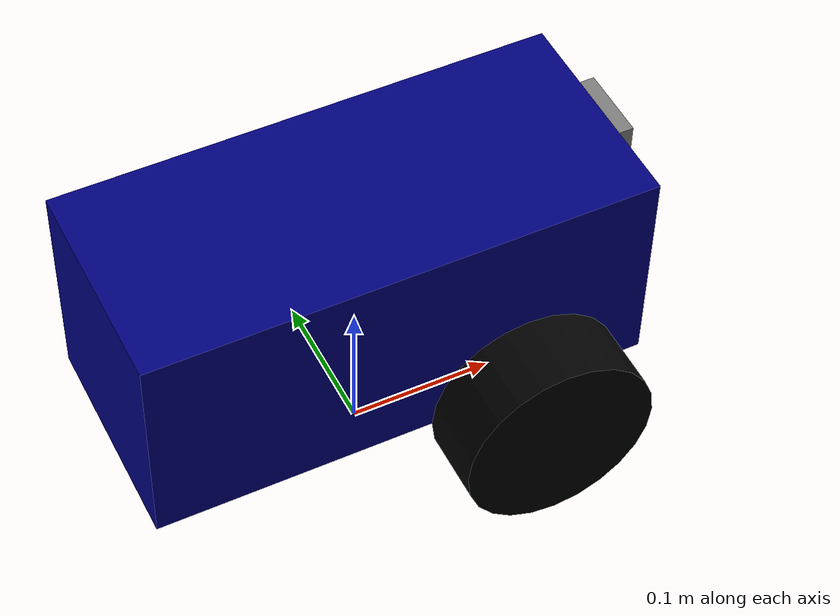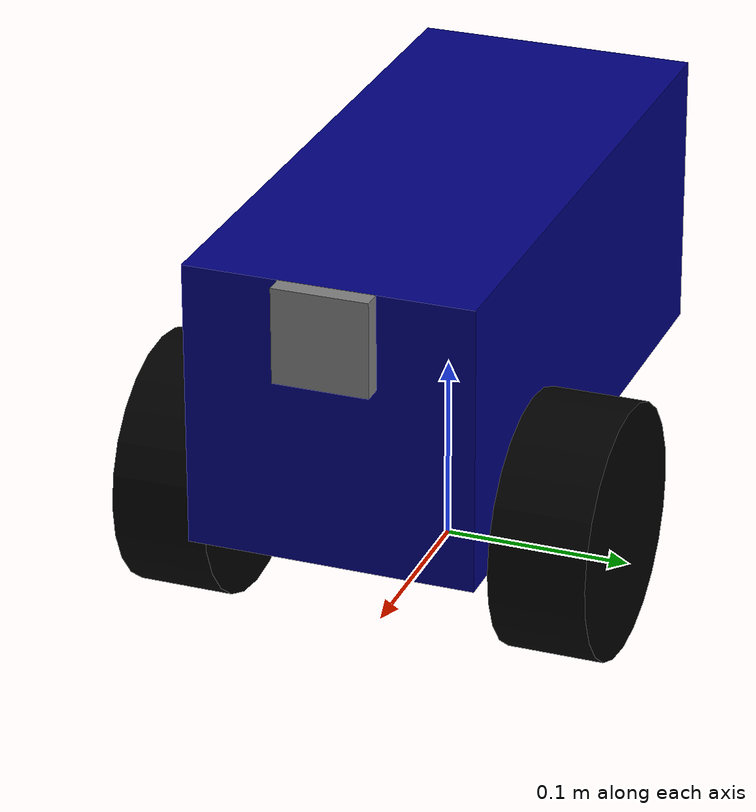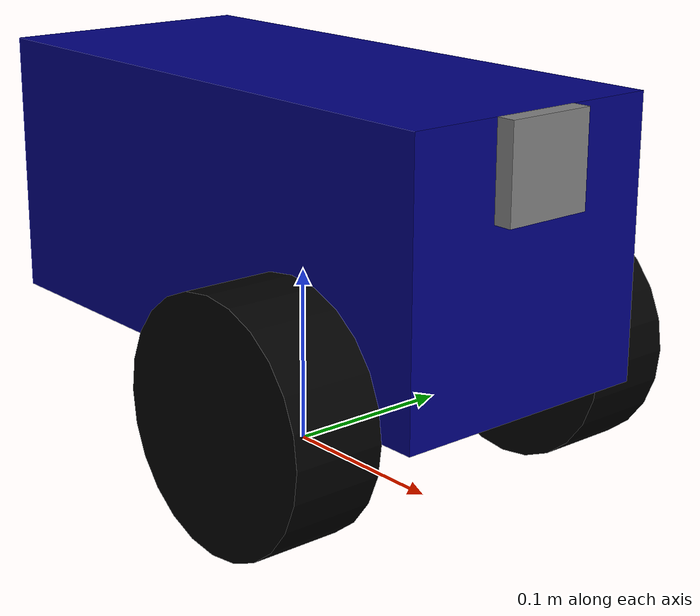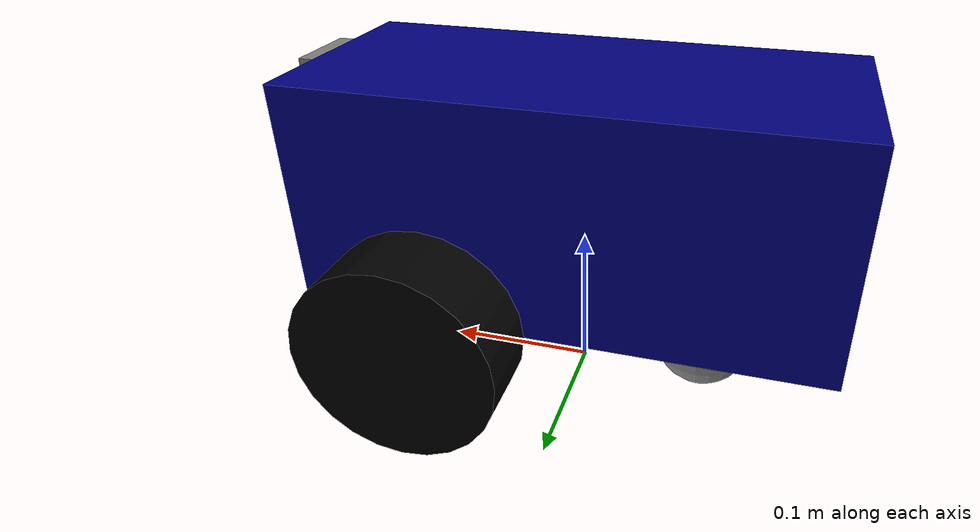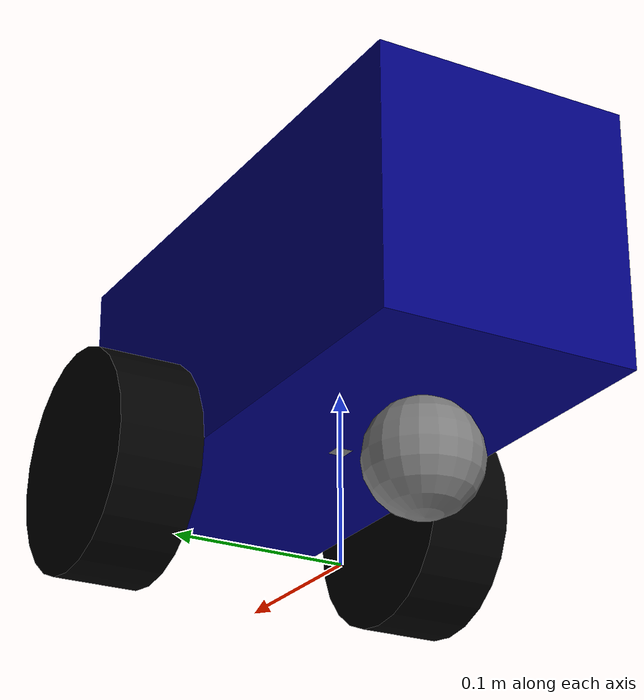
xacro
<?xml version="1.0"?>
<robot name="duckiebot" xmlns:xacro="http://www.ros.org/wiki/xacro">   <!-- xacro'da bu önemli -->
    <!-- xacro'da başka bir xacro dosyasını include edebiliriz -->
    <!-- common properties'i mobile_base'de include edebilir miydik? evet ama başka xacro dosyalarında da kullanılabilirdi bu common properties. o zaman onu burda include etmek daha mantıklı-->
    <xacro:include filename="common_properties.xacro" /> <!-- bunu yapınca o dosyalar otomatik çalışacaklar, ama launch dosyasına sadece bu main dosya çalıştırılıyor. magic-->
    <xacro:include filename="mobile_base.xacro" />
    <xacro:include  filename="mobile_base_gazebo.xacro" />
    <xacro:include  filename="camera.xacro" />
    <xacro:include  filename="imu.xacro" />
</robot>

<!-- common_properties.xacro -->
<!-- bu dosyayı direkt launch etmicez, main dosyaya include edip öyle kullanıcaz, o yüzden isim yazmıyorum name ="bla bla" diye, sadece xacro linkini veriyorum -->
<robot xmlns:xacro="http://www.ros.org/wiki/xacro">
    <material name="blue">
        <color rgba="0 0 0.5 1"/>
    </material>

    <material name="black">
        <color rgba="0 0 0 1"/>
    </material>

    <material name="grey">
        <color rgba="0.5 0.5 0.5 1"/>
    </material>

    <!-- sadece değişken değil fonksiyon da tanımlayabilirsin -->
    <!-- box inertia'yı fonksiyon olarak yazıp her türlü box'a uyarlayabilir olucaz. -->
    <xacro:macro name="box_inertia" params="m x y z o_xyz o_rpy">
        <inertial>
            <mass value="${m}" />
            <origin xyz="${o_xyz}" rpy ="${o_rpy}" />
            <inertia ixx="${(m/12) * (y*y + z*z)}" ixy="0" ixz="0"
                     iyy="${(m/12) * (x*x + z*z)}" iyz="0"
                     izz="${(m/12) * (x*x + y*y)}" />
        </inertial>
    </xacro:macro>

    <!-- cylinder inertia'yı fonksiyon olarak yazıp her türlü cylinder linke (rigid part) uyarlayabilir olucaz. -->
    <xacro:macro name="cylinder_inertia" params="m r h o_xyz o_rpy">
        <inertial>
            <mass value="${m}" />
            <origin xyz="${o_xyz}" rpy ="${o_rpy}" />
            <inertia ixx="${(m/12) * (3*r*r + h*h)}" ixy="0" ixz="0"
                     iyy="${(m/12) * (3*r*r + h*h)}" iyz="0"
                     izz="${(m*r*r)/2.0}" />
        </inertial>
    </xacro:macro>

        <!-- cylinder inertia'yı fonksiyon olarak yazıp her türlü cylinder linke (rigid part) uyarlayabilir olucaz. -->
    <xacro:macro name="sphere_inertia" params="m r o_xyz o_rpy">
        <inertial>
            <mass value="${m}" />
            <origin xyz="${o_xyz}" rpy ="${o_rpy}" />
            <inertia ixx="${(m*r*r)*2/5}" ixy="0" ixz="0"
                     iyy="${(m*r*r)*2/5}" iyz="0"
                     izz="${(m*r*r)*2/5}" />
        </inertial>
    </xacro:macro>
</robot>

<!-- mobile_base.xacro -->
<robot xmlns:xacro="http://www.ros.org/wiki/xacro">

    <xacro:property name="base_length" value="0.34" />
    <xacro:property name="base_width" value="0.15" />
    <xacro:property name="base_height" value="0.15" />
    <xacro:property name="wheel_radius" value="0.066" />
    <xacro:property name="wheel_length" value="0.05" />

    <link name="base_footprint" >
        <origin xyz= "0 0 0" rpy="0 0 0" />
    </link>

    <xacro:macro name="wheel_link" params="prefix">
        <link name="${prefix}_wheel_link">
            <visual>
                <geometry>
                    <cylinder radius="${wheel_radius}" length="${wheel_length}"/>
                </geometry>
                <origin xyz="0 0 0" rpy ="${pi / 2.0} 0 0" />
                <material name="black" />
            </visual>
            <collision>
                <geometry>
                    <sphere radius="${wheel_radius}" />
                </geometry>
                <origin xyz="0 0 0" rpy ="0 0 0" /> <!-- silindir gibi rotate etmedik çünkü sphere olduğu için bişi değiştirmicek-->
            </collision>
            <!-- inertia eklicez common properties'te tanıttığımız fonksiyonu kullanarak, m kilogram cinsinden-->
            <xacro:cylinder_inertia m="1.0" r="${wheel_radius}" h="${wheel_length}" o_xyz="0 0 0" o_rpy="${pi / 2.0} 0 0" />
        </link>
    </xacro:macro>

    <xacro:wheel_link prefix="right" />
    <xacro:wheel_link prefix="left" />

    <link name="base_link">
        <visual>
            <geometry>
                 <box size="${base_length} ${base_width} ${base_height}" /> <!-- length width height in meters -->
            </geometry>
            <origin xyz= "0 0 ${base_height / 2.0}" rpy="0 0 0" />
            <material name="blue" />
        </visual>
        <!-- collision ekliyoruz-->
        <collision>
            <!-- direkt visual'daki geometriyi ve origini koyduk, basit olması için -->
            <geometry>
                 <box size="${base_length} ${base_width} ${base_height}" />
            </geometry>
            <origin xyz= "0 0 ${base_height / 2.0}" rpy="0 0 0" />
        </collision>
        <!-- inertia eklicez common properties'te tanıttığımız fonksiyonu kullanarak-->
        <xacro:box_inertia m="1.8" x="${base_length}" y="${base_width}" z="${base_height}" o_xyz="0 0 ${base_height / 2.0}" o_rpy="0 0 0" />
    </link>

    <link name="caster_wheel_link">
        <visual>
            <geometry>
                <sphere radius="${wheel_radius / 2.0}"/>
            </geometry>
            <origin xyz="0 0 0" rpy ="0 0 0" />
            <material name="grey" />
        </visual>
        <!-- collisionu direkt yukardan kopyaladık-->
        <collision>
            <geometry>
                <sphere radius="${wheel_radius / 2.0}"/>
            </geometry>
            <origin xyz="0 0 0" rpy ="0 0 0" />
        </collision>
        <!-- inertia eklicez common properties'te tanıttığımız fonksiyonu kullanarak-->
        <xacro:sphere_inertia m="0.5" r="${wheel_radius / 2.0}" o_xyz="0 0 0" o_rpy="0 0 0" />
    </link>

    <joint name="base_caster_wheel_joint" type="fixed">
        <parent link="base_link" />
        <child link ="caster_wheel_link" />
        <origin xyz="${-base_length / 4.0} 0 ${-wheel_radius / 2.0}" rpy="0 0 0" />
    </joint>

    <joint name="base_right_wheel_joint" type="continuous">
        <parent link="base_link" />
        <child link="right_wheel_link" />
        <origin xyz="${base_length / 4.0} ${-(base_width + wheel_length) / 2.0} 0" rpy="0 0 0" />
        <axis xyz="0 1 0" />
    </joint>

    <joint name="base_left_wheel_joint" type="continuous">
        <parent link="base_link" />
        <child link="left_wheel_link" />
        <origin xyz="${base_length / 4.0} ${(base_width + wheel_length) / 2.0} 0" rpy="0 0 0" />
        <axis xyz="0 1 0" />
    </joint>

    <joint name="base_joint" type="fixed">
        <parent link="base_footprint" />
        <child link ="base_link" />
        <origin xyz="0 0 ${wheel_radius}" rpy="0 0 0" />
    </joint>
</robot>

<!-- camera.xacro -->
<robot xmlns:xacro="http://www.ros.org/wiki/xacro">

    <xacro:property name="camera_length" value="0.01" />
    <xacro:property name="camera_width" value="0.05" />
    <xacro:property name="camera_height" value="0.05" />

    <link name="camera_link">
        <visual>
            <geometry>
                <box size="${camera_length} ${camera_width} ${camera_height}" />
            </geometry>
            <material name="grey" />
        </visual>
        <collision>
            <geometry>
                <box size="${camera_length} ${camera_width} ${camera_height}" />
            </geometry>
        </collision>
        <xacro:box_inertia m="0.1" x="${camera_length}" y="${camera_width}" z="${camera_height}"
                           o_xyz="0 0 0" o_rpy="0 0 0" />
    </link>

    <joint name="base_camera_joint" type="fixed">
        <parent link="base_link" />
        <child link="camera_link" />
        <origin xyz="${(base_length + camera_length) / 2.0} 0 ${base_height-(camera_height/2.0)}" rpy="0 0 0" />
    </joint>

    <link name="camera_link_optical" />

    <joint name="camera_optical_joint" type="fixed">
        <origin xyz="0 0 0" rpy="${-pi/2} 0 ${-pi/2}"/>
        <parent link="camera_link"/>
        <child link="camera_link_optical"/>
    </joint>

    <gazebo reference="camera_link">
        <sensor name="camera" type="camera">
            <camera>
                <horizontal_fov>1.3962634</horizontal_fov>
                <image>
                    <width>640</width>
                    <height>480</height>
                    <format>R8G8B8</format>
                </image>
                <clip>
                    <near>0.1</near>
                    <far>15</far>
                </clip>
                <noise>
                    <type>gaussian</type>
                    <mean>0.0</mean>
                    <stddev>0.007</stddev>
                </noise>
                <optical_frame_id>camera_link_optical</optical_frame_id>
                <camera_info_topic>camera/camera_info</camera_info_topic>
            </camera>
            <always_on>1</always_on>
            <update_rate>20</update_rate>
            <visualize>true</visualize>
            <topic>camera/image_raw</topic>
        </sensor>
    </gazebo>

</robot>

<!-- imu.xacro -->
<robot xmlns:xacro="http://www.ros.org/wiki/xacro">

    <xacro:property name="imu_length" value="0.01" />
    <xacro:property name="imu_width" value="0.01" />
    <xacro:property name="imu_height" value="0.01" />

    <link name="imu_link">
        <visual>
            <geometry>
                <box size="${imu_length} ${imu_width} ${imu_height}" />
            </geometry>
            <material name="grey" />
        </visual>
        <collision>
            <geometry>
                <box size="${imu_length} ${imu_width} ${imu_height}" />
            </geometry>
        </collision>
        <xacro:box_inertia m="0.1" x="${imu_length}" y="${imu_width}" z="${imu_height}"
                           o_xyz="0 0 0" o_rpy="0 0 0" />
    </link>

    <joint name="base_imu_joint" type="fixed">
        <parent link="base_link" />
        <child link="imu_link" />
        <origin xyz="0 0 ${(imu_height/2.0)}" rpy="0 0 0" />
    </joint>

<gazebo reference="imu_link"> <sensor name="imu_sensor" type="imu">
    <always_on>1</always_on>
    <update_rate>100</update_rate>
    <visualize>true</visualize>
    <topic>imu</topic>
    <plugin filename="gz-sim-imu-system" name="gz::sim::systems::Imu">
    </plugin>
  </sensor>
</gazebo>

</robot>
